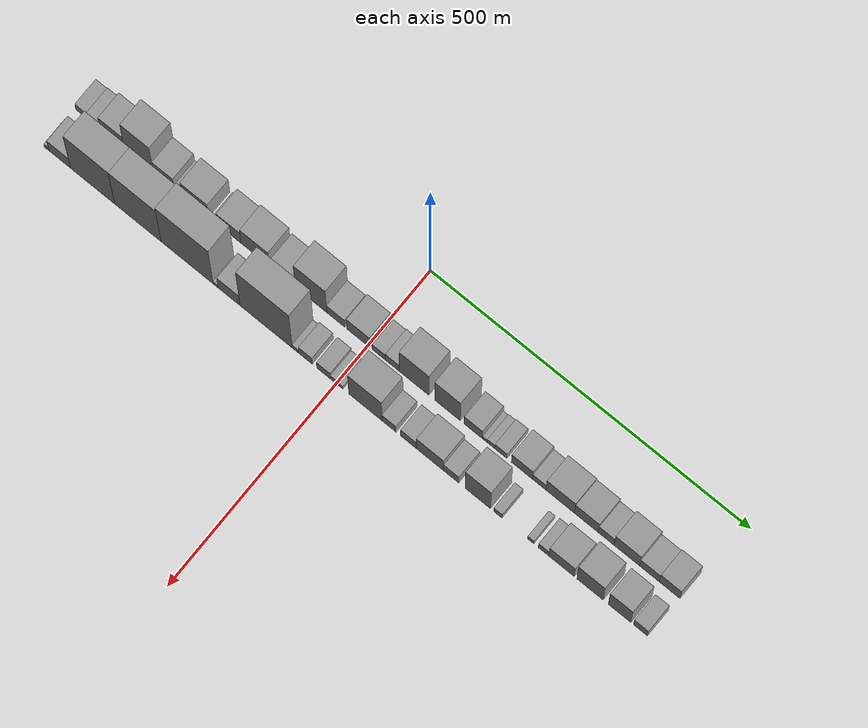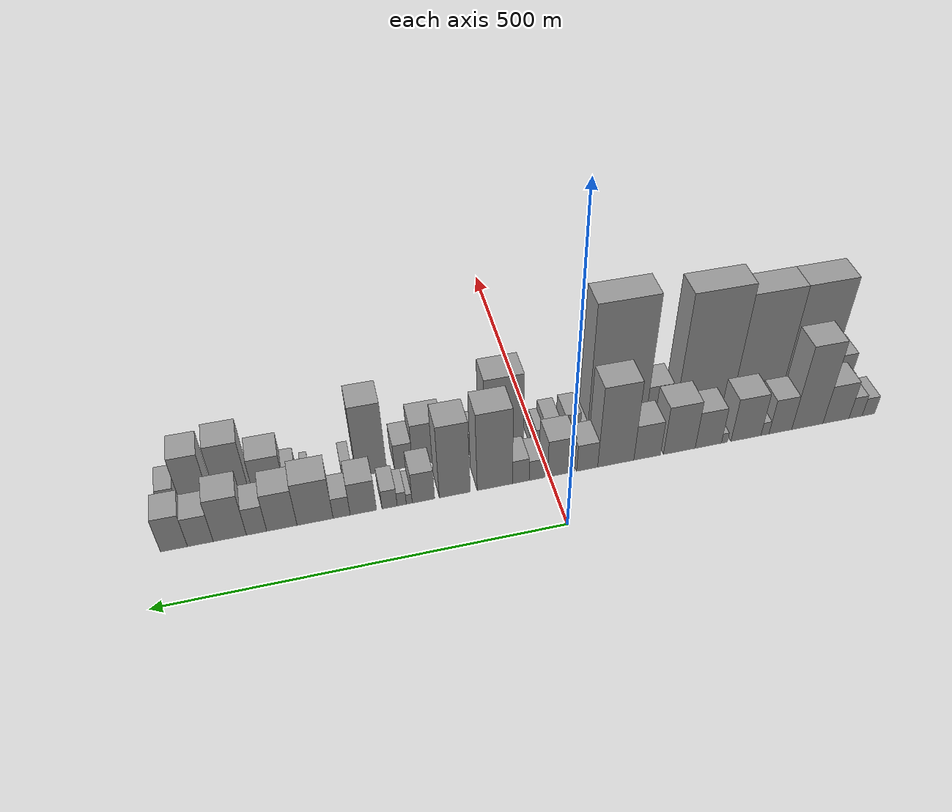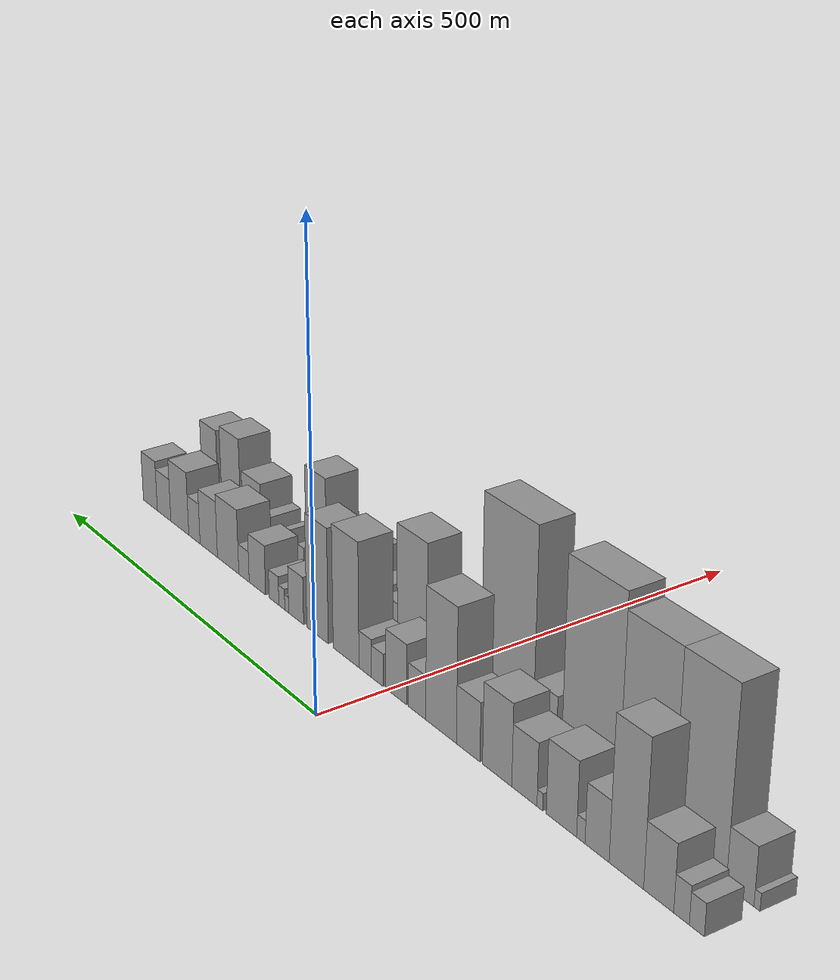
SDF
<sdf version="1.6">
 <world name="default">
  <scene>
   <sky><clouds><speed>12</speed></clouds></sky>
   <ambient>0.4 0.4 0.4 1</ambient>
   <background>0.7 0.7 0.7 1</background>
   <shadows>1</shadows>
  </scene>
  <gravity>0 0 -9.8066</gravity>
  <magnetic_field>6e-06 2.3e-05 -4.2e-05</magnetic_field>
  <physics default="0" name="default_physics" type="ode">
   <ode>
    <solver>
     <type>quick</type>
     <iters>10</iters>
     <sor>1.0</sor>
     <use_dynamic_moi_rescaling>0</use_dynamic_moi_rescaling>
    </solver>
    <constraints>
     <cfm>0</cfm>
     <erp>0.2</erp>
     <contact_max_correcting_vel>100</contact_max_correcting_vel>
     <contact_surface_layer>0.001</contact_surface_layer>
    </constraints>
   </ode>
   <max_step_size>0.004</max_step_size>
   <real_time_factor>1</real_time_factor>
   <real_time_update_rate>250</real_time_update_rate>
  </physics>
  <light name="sun" type="directional">
   <pose>0 0 10 0 0 0</pose>
   <diffuse>0.8 0.8 0.8 1</diffuse>
   <specular>0.2 0.2 0.2 1</specular>
   <attenuation>
    <range>1000</range>
    <constant>0.9</constant>
    <linear>0.01</linear>
    <quadratic>0.001</quadratic>
   </attenuation>
   <direction>-0.5 0.1 -0.9</direction>
  </light>
  <model name="building_1">
   <static>1</static>
   <pose>100.0000 -450.6333 0 0.000000 0.000000 0.000000</pose>
   <link name="link">
    <pose>0 0 16.50 0 0 0</pose>
    <collision name="collision"><geometry><box><size>40.0000 18.7334 33.0000</size></box></geometry></collision>
    <visual name="visual">
     <cast_shadows>0</cast_shadows>
     <geometry><box><size>40.0000 18.7334 33.0000</size></box></geometry>
     <material>
      <script>
       <uri>model://grey_wall/materials/scripts</uri>
       <uri>model://grey_wall/materials/textures</uri>
       <name>vrc/grey_wall</name>
      </script>
     </material>
    </visual>
   </link>
  </model>
  <model name="building_2">
   <static>1</static>
   <pose>100.0000 -431.4945 0 0.000000 0.000000 0.000000</pose>
   <link name="link">
    <pose>0 0 19.50 0 0 0</pose>
    <collision name="collision"><geometry><box><size>40.0000 19.5441 39.0000</size></box></geometry></collision>
    <visual name="visual">
     <cast_shadows>0</cast_shadows>
     <geometry><box><size>40.0000 19.5441 39.0000</size></box></geometry>
     <material>
      <script>
       <uri>model://grey_wall/materials/scripts</uri>
       <uri>model://grey_wall/materials/textures</uri>
       <name>vrc/grey_wall</name>
      </script>
     </material>
    </visual>
   </link>
  </model>
  <model name="building_3">
   <static>1</static>
   <pose>100.0000 -402.3901 0 0.000000 0.000000 0.000000</pose>
   <link name="link">
    <pose>0 0 34.50 0 0 0</pose>
    <collision name="collision"><geometry><box><size>40.0000 38.6647 69.0000</size></box></geometry></collision>
    <visual name="visual">
     <cast_shadows>0</cast_shadows>
     <geometry><box><size>40.0000 38.6647 69.0000</size></box></geometry>
     <material>
      <script>
       <uri>model://grey_wall/materials/scripts</uri>
       <uri>model://grey_wall/materials/textures</uri>
       <name>vrc/grey_wall</name>
      </script>
     </material>
    </visual>
   </link>
  </model>
  <model name="building_4">
   <static>1</static>
   <pose>100.0000 -360.1945 0 0.000000 0.000000 0.000000</pose>
   <link name="link">
    <pose>0 0 75.00 0 0 0</pose>
    <collision name="collision"><geometry><box><size>40.0000 45.7265 150.0000</size></box></geometry></collision>
    <visual name="visual">
     <cast_shadows>0</cast_shadows>
     <geometry><box><size>40.0000 45.7265 150.0000</size></box></geometry>
     <material>
      <script>
       <uri>model://grey_wall/materials/scripts</uri>
       <uri>model://grey_wall/materials/textures</uri>
       <name>vrc/grey_wall</name>
      </script>
     </material>
    </visual>
   </link>
  </model>
  <model name="building_5">
   <static>1</static>
   <pose>100.0000 -320.8762 0 0.000000 0.000000 0.000000</pose>
   <link name="link">
    <pose>0 0 31.50 0 0 0</pose>
    <collision name="collision"><geometry><box><size>40.0000 32.9101 63.0000</size></box></geometry></collision>
    <visual name="visual">
     <cast_shadows>0</cast_shadows>
     <geometry><box><size>40.0000 32.9101 63.0000</size></box></geometry>
     <material>
      <script>
       <uri>model://grey_wall/materials/scripts</uri>
       <uri>model://grey_wall/materials/textures</uri>
       <name>vrc/grey_wall</name>
      </script>
     </material>
    </visual>
   </link>
  </model>
  <model name="building_6">
   <static>1</static>
   <pose>100.0000 -298.6075 0 0.000000 0.000000 0.000000</pose>
   <link name="link">
    <pose>0 0 12.00 0 0 0</pose>
    <collision name="collision"><geometry><box><size>40.0000 11.6273 24.0000</size></box></geometry></collision>
    <visual name="visual">
     <cast_shadows>0</cast_shadows>
     <geometry><box><size>40.0000 11.6273 24.0000</size></box></geometry>
     <material>
      <script>
       <uri>model://grey_wall/materials/scripts</uri>
       <uri>model://grey_wall/materials/textures</uri>
       <name>vrc/grey_wall</name>
      </script>
     </material>
    </visual>
   </link>
  </model>
  <model name="building_7">
   <static>1</static>
   <pose>100.0000 -271.3014 0 0.000000 0.000000 0.000000</pose>
   <link name="link">
    <pose>0 0 39.00 0 0 0</pose>
    <collision name="collision"><geometry><box><size>40.0000 42.9849 78.0000</size></box></geometry></collision>
    <visual name="visual">
     <cast_shadows>0</cast_shadows>
     <geometry><box><size>40.0000 42.9849 78.0000</size></box></geometry>
     <material>
      <script>
       <uri>model://grey_wall/materials/scripts</uri>
       <uri>model://grey_wall/materials/textures</uri>
       <name>vrc/grey_wall</name>
      </script>
     </material>
    </visual>
   </link>
  </model>
  <model name="building_8">
   <static>1</static>
   <pose>100.0000 -240.5667 0 0.000000 0.000000 0.000000</pose>
   <link name="link">
    <pose>0 0 9.00 0 0 0</pose>
    <collision name="collision"><geometry><box><size>40.0000 8.4845 18.0000</size></box></geometry></collision>
    <visual name="visual">
     <cast_shadows>0</cast_shadows>
     <geometry><box><size>40.0000 8.4845 18.0000</size></box></geometry>
     <material>
      <script>
       <uri>model://grey_wall/materials/scripts</uri>
       <uri>model://grey_wall/materials/textures</uri>
       <name>vrc/grey_wall</name>
      </script>
     </material>
    </visual>
   </link>
  </model>
  <model name="building_9">
   <static>1</static>
   <pose>100.0000 -217.7223 0 0.000000 0.000000 0.000000</pose>
   <link name="link">
    <pose>0 0 33.00 0 0 0</pose>
    <collision name="collision"><geometry><box><size>40.0000 37.2043 66.0000</size></box></geometry></collision>
    <visual name="visual">
     <cast_shadows>0</cast_shadows>
     <geometry><box><size>40.0000 37.2043 66.0000</size></box></geometry>
     <material>
      <script>
       <uri>model://grey_wall/materials/scripts</uri>
       <uri>model://grey_wall/materials/textures</uri>
       <name>vrc/grey_wall</name>
      </script>
     </material>
    </visual>
   </link>
  </model>
  <model name="building_10">
   <static>1</static>
   <pose>100.0000 -176.9449 0 0.000000 0.000000 0.000000</pose>
   <link name="link">
    <pose>0 0 43.50 0 0 0</pose>
    <collision name="collision"><geometry><box><size>40.0000 44.3504 87.0000</size></box></geometry></collision>
    <visual name="visual">
     <cast_shadows>0</cast_shadows>
     <geometry><box><size>40.0000 44.3504 87.0000</size></box></geometry>
     <material>
      <script>
       <uri>model://grey_wall/materials/scripts</uri>
       <uri>model://grey_wall/materials/textures</uri>
       <name>vrc/grey_wall</name>
      </script>
     </material>
    </visual>
   </link>
  </model>
  <model name="building_11">
   <static>1</static>
   <pose>100.0000 -132.3073 0 0.000000 0.000000 0.000000</pose>
   <link name="link">
    <pose>0 0 31.50 0 0 0</pose>
    <collision name="collision"><geometry><box><size>40.0000 36.9248 63.0000</size></box></geometry></collision>
    <visual name="visual">
     <cast_shadows>0</cast_shadows>
     <geometry><box><size>40.0000 36.9248 63.0000</size></box></geometry>
     <material>
      <script>
       <uri>model://grey_wall/materials/scripts</uri>
       <uri>model://grey_wall/materials/textures</uri>
       <name>vrc/grey_wall</name>
      </script>
     </material>
    </visual>
   </link>
  </model>
  <model name="building_12">
   <static>1</static>
   <pose>100.0000 -89.1374 0 0.000000 0.000000 0.000000</pose>
   <link name="link">
    <pose>0 0 72.00 0 0 0</pose>
    <collision name="collision"><geometry><box><size>40.0000 49.4149 144.0000</size></box></geometry></collision>
    <visual name="visual">
     <cast_shadows>0</cast_shadows>
     <geometry><box><size>40.0000 49.4149 144.0000</size></box></geometry>
     <material>
      <script>
       <uri>model://grey_wall/materials/scripts</uri>
       <uri>model://grey_wall/materials/textures</uri>
       <name>vrc/grey_wall</name>
      </script>
     </material>
    </visual>
   </link>
  </model>
  <model name="building_13">
   <static>1</static>
   <pose>100.0000 -50.1708 0 0.000000 0.000000 0.000000</pose>
   <link name="link">
    <pose>0 0 24.00 0 0 0</pose>
    <collision name="collision"><geometry><box><size>40.0000 28.5183 48.0000</size></box></geometry></collision>
    <visual name="visual">
     <cast_shadows>0</cast_shadows>
     <geometry><box><size>40.0000 28.5183 48.0000</size></box></geometry>
     <material>
      <script>
       <uri>model://grey_wall/materials/scripts</uri>
       <uri>model://grey_wall/materials/textures</uri>
       <name>vrc/grey_wall</name>
      </script>
     </material>
    </visual>
   </link>
  </model>
  <model name="building_14">
   <static>1</static>
   <pose>100.0000 -14.8953 0 0.000000 0.000000 0.000000</pose>
   <link name="link">
    <pose>0 0 33.00 0 0 0</pose>
    <collision name="collision"><geometry><box><size>40.0000 36.0329 66.0000</size></box></geometry></collision>
    <visual name="visual">
     <cast_shadows>0</cast_shadows>
     <geometry><box><size>40.0000 36.0329 66.0000</size></box></geometry>
     <material>
      <script>
       <uri>model://grey_wall/materials/scripts</uri>
       <uri>model://grey_wall/materials/textures</uri>
       <name>vrc/grey_wall</name>
      </script>
     </material>
    </visual>
   </link>
  </model>
  <model name="building_15">
   <static>1</static>
   <pose>100.0000 17.3665 0 0.000000 0.000000 0.000000</pose>
   <link name="link">
    <pose>0 0 18.00 0 0 0</pose>
    <collision name="collision"><geometry><box><size>40.0000 20.4907 36.0000</size></box></geometry></collision>
    <visual name="visual">
     <cast_shadows>0</cast_shadows>
     <geometry><box><size>40.0000 20.4907 36.0000</size></box></geometry>
     <material>
      <script>
       <uri>model://grey_wall/materials/scripts</uri>
       <uri>model://grey_wall/materials/textures</uri>
       <name>vrc/grey_wall</name>
      </script>
     </material>
    </visual>
   </link>
  </model>
  <model name="building_16">
   <static>1</static>
   <pose>100.0000 38.4978 0 0.000000 0.000000 0.000000</pose>
   <link name="link">
    <pose>0 0 21.00 0 0 0</pose>
    <collision name="collision"><geometry><box><size>40.0000 21.7718 42.0000</size></box></geometry></collision>
    <visual name="visual">
     <cast_shadows>0</cast_shadows>
     <geometry><box><size>40.0000 21.7718 42.0000</size></box></geometry>
     <material>
      <script>
       <uri>model://grey_wall/materials/scripts</uri>
       <uri>model://grey_wall/materials/textures</uri>
       <name>vrc/grey_wall</name>
      </script>
     </material>
    </visual>
   </link>
  </model>
  <model name="building_17">
   <static>1</static>
   <pose>100.0000 72.5670 0 0.000000 0.000000 0.000000</pose>
   <link name="link">
    <pose>0 0 69.00 0 0 0</pose>
    <collision name="collision"><geometry><box><size>40.0000 46.3667 138.0000</size></box></geometry></collision>
    <visual name="visual">
     <cast_shadows>0</cast_shadows>
     <geometry><box><size>40.0000 46.3667 138.0000</size></box></geometry>
     <material>
      <script>
       <uri>model://grey_wall/materials/scripts</uri>
       <uri>model://grey_wall/materials/textures</uri>
       <name>vrc/grey_wall</name>
      </script>
     </material>
    </visual>
   </link>
  </model>
  <model name="building_18">
   <static>1</static>
   <pose>100.0000 124.7555 0 0.000000 0.000000 0.000000</pose>
   <link name="link">
    <pose>0 0 64.50 0 0 0</pose>
    <collision name="collision"><geometry><box><size>40.0000 40.0102 129.0000</size></box></geometry></collision>
    <visual name="visual">
     <cast_shadows>0</cast_shadows>
     <geometry><box><size>40.0000 40.0102 129.0000</size></box></geometry>
     <material>
      <script>
       <uri>model://grey_wall/materials/scripts</uri>
       <uri>model://grey_wall/materials/textures</uri>
       <name>vrc/grey_wall</name>
      </script>
     </material>
    </visual>
   </link>
  </model>
  <model name="building_19">
   <static>1</static>
   <pose>100.0000 165.0707 0 0.000000 0.000000 0.000000</pose>
   <link name="link">
    <pose>0 0 27.00 0 0 0</pose>
    <collision name="collision"><geometry><box><size>40.0000 28.6201 54.0000</size></box></geometry></collision>
    <visual name="visual">
     <cast_shadows>0</cast_shadows>
     <geometry><box><size>40.0000 28.6201 54.0000</size></box></geometry>
     <material>
      <script>
       <uri>model://grey_wall/materials/scripts</uri>
       <uri>model://grey_wall/materials/textures</uri>
       <name>vrc/grey_wall</name>
      </script>
     </material>
    </visual>
   </link>
  </model>
  <model name="building_20">
   <static>1</static>
   <pose>100.0000 183.1911 0 0.000000 0.000000 0.000000</pose>
   <link name="link">
    <pose>0 0 9.00 0 0 0</pose>
    <collision name="collision"><geometry><box><size>40.0000 7.6208 18.0000</size></box></geometry></collision>
    <visual name="visual">
     <cast_shadows>0</cast_shadows>
     <geometry><box><size>40.0000 7.6208 18.0000</size></box></geometry>
     <material>
      <script>
       <uri>model://grey_wall/materials/scripts</uri>
       <uri>model://grey_wall/materials/textures</uri>
       <name>vrc/grey_wall</name>
      </script>
     </material>
    </visual>
   </link>
  </model>
  <model name="building_21">
   <static>1</static>
   <pose>100.0000 192.7777 0 0.000000 0.000000 0.000000</pose>
   <link name="link">
    <pose>0 0 12.00 0 0 0</pose>
    <collision name="collision"><geometry><box><size>40.0000 11.5524 24.0000</size></box></geometry></collision>
    <visual name="visual">
     <cast_shadows>0</cast_shadows>
     <geometry><box><size>40.0000 11.5524 24.0000</size></box></geometry>
     <material>
      <script>
       <uri>model://grey_wall/materials/scripts</uri>
       <uri>model://grey_wall/materials/textures</uri>
       <name>vrc/grey_wall</name>
      </script>
     </material>
    </visual>
   </link>
  </model>
  <model name="building_22">
   <static>1</static>
   <pose>100.0000 208.0630 0 0.000000 0.000000 0.000000</pose>
   <link name="link">
    <pose>0 0 16.50 0 0 0</pose>
    <collision name="collision"><geometry><box><size>40.0000 19.0182 33.0000</size></box></geometry></collision>
    <visual name="visual">
     <cast_shadows>0</cast_shadows>
     <geometry><box><size>40.0000 19.0182 33.0000</size></box></geometry>
     <material>
      <script>
       <uri>model://grey_wall/materials/scripts</uri>
       <uri>model://grey_wall/materials/textures</uri>
       <name>vrc/grey_wall</name>
      </script>
     </material>
    </visual>
   </link>
  </model>
  <model name="building_23">
   <static>1</static>
   <pose>100.0000 241.0356 0 0.000000 0.000000 0.000000</pose>
   <link name="link">
    <pose>0 0 28.50 0 0 0</pose>
    <collision name="collision"><geometry><box><size>40.0000 32.9269 57.0000</size></box></geometry></collision>
    <visual name="visual">
     <cast_shadows>0</cast_shadows>
     <geometry><box><size>40.0000 32.9269 57.0000</size></box></geometry>
     <material>
      <script>
       <uri>model://grey_wall/materials/scripts</uri>
       <uri>model://grey_wall/materials/textures</uri>
       <name>vrc/grey_wall</name>
      </script>
     </material>
    </visual>
   </link>
  </model>
  <model name="building_24">
   <static>1</static>
   <pose>100.0000 268.0763 0 0.000000 0.000000 0.000000</pose>
   <link name="link">
    <pose>0 0 18.00 0 0 0</pose>
    <collision name="collision"><geometry><box><size>40.0000 21.1546 36.0000</size></box></geometry></collision>
    <visual name="visual">
     <cast_shadows>0</cast_shadows>
     <geometry><box><size>40.0000 21.1546 36.0000</size></box></geometry>
     <material>
      <script>
       <uri>model://grey_wall/materials/scripts</uri>
       <uri>model://grey_wall/materials/textures</uri>
       <name>vrc/grey_wall</name>
      </script>
     </material>
    </visual>
   </link>
  </model>
  <model name="building_25">
   <static>1</static>
   <pose>100.0000 300.8559 0 0.000000 0.000000 0.000000</pose>
   <link name="link">
    <pose>0 0 37.50 0 0 0</pose>
    <collision name="collision"><geometry><box><size>40.0000 44.4047 75.0000</size></box></geometry></collision>
    <visual name="visual">
     <cast_shadows>0</cast_shadows>
     <geometry><box><size>40.0000 44.4047 75.0000</size></box></geometry>
     <material>
      <script>
       <uri>model://grey_wall/materials/scripts</uri>
       <uri>model://grey_wall/materials/textures</uri>
       <name>vrc/grey_wall</name>
      </script>
     </material>
    </visual>
   </link>
  </model>
  <model name="building_26">
   <static>1</static>
   <pose>100.0000 341.5519 0 0.000000 0.000000 0.000000</pose>
   <link name="link">
    <pose>0 0 33.00 0 0 0</pose>
    <collision name="collision"><geometry><box><size>40.0000 36.9872 66.0000</size></box></geometry></collision>
    <visual name="visual">
     <cast_shadows>0</cast_shadows>
     <geometry><box><size>40.0000 36.9872 66.0000</size></box></geometry>
     <material>
      <script>
       <uri>model://grey_wall/materials/scripts</uri>
       <uri>model://grey_wall/materials/textures</uri>
       <name>vrc/grey_wall</name>
      </script>
     </material>
    </visual>
   </link>
  </model>
  <model name="building_27">
   <static>1</static>
   <pose>100.0000 372.3275 0 0.000000 0.000000 0.000000</pose>
   <link name="link">
    <pose>0 0 24.00 0 0 0</pose>
    <collision name="collision"><geometry><box><size>40.0000 24.5641 48.0000</size></box></geometry></collision>
    <visual name="visual">
     <cast_shadows>0</cast_shadows>
     <geometry><box><size>40.0000 24.5641 48.0000</size></box></geometry>
     <material>
      <script>
       <uri>model://grey_wall/materials/scripts</uri>
       <uri>model://grey_wall/materials/textures</uri>
       <name>vrc/grey_wall</name>
      </script>
     </material>
    </visual>
   </link>
  </model>
  <model name="building_28">
   <static>1</static>
   <pose>100.0000 404.4426 0 0.000000 0.000000 0.000000</pose>
   <link name="link">
    <pose>0 0 37.50 0 0 0</pose>
    <collision name="collision"><geometry><box><size>40.0000 39.6660 75.0000</size></box></geometry></collision>
    <visual name="visual">
     <cast_shadows>0</cast_shadows>
     <geometry><box><size>40.0000 39.6660 75.0000</size></box></geometry>
     <material>
      <script>
       <uri>model://grey_wall/materials/scripts</uri>
       <uri>model://grey_wall/materials/textures</uri>
       <name>vrc/grey_wall</name>
      </script>
     </material>
    </visual>
   </link>
  </model>
  <model name="building_29">
   <static>1</static>
   <pose>100.0000 439.5556 0 0.000000 0.000000 0.000000</pose>
   <link name="link">
    <pose>0 0 25.50 0 0 0</pose>
    <collision name="collision"><geometry><box><size>40.0000 30.5601 51.0000</size></box></geometry></collision>
    <visual name="visual">
     <cast_shadows>0</cast_shadows>
     <geometry><box><size>40.0000 30.5601 51.0000</size></box></geometry>
     <material>
      <script>
       <uri>model://grey_wall/materials/scripts</uri>
       <uri>model://grey_wall/materials/textures</uri>
       <name>vrc/grey_wall</name>
      </script>
     </material>
    </visual>
   </link>
  </model>
  <model name="building_30">
   <static>1</static>
   <pose>100.0000 470.7712 0 0.000000 0.000000 0.000000</pose>
   <link name="link">
    <pose>0 0 30.00 0 0 0</pose>
    <collision name="collision"><geometry><box><size>40.0000 31.8711 60.0000</size></box></geometry></collision>
    <visual name="visual">
     <cast_shadows>0</cast_shadows>
     <geometry><box><size>40.0000 31.8711 60.0000</size></box></geometry>
     <material>
      <script>
       <uri>model://grey_wall/materials/scripts</uri>
       <uri>model://grey_wall/materials/textures</uri>
       <name>vrc/grey_wall</name>
      </script>
     </material>
    </visual>
   </link>
  </model>
  <model name="building_31">
   <static>1</static>
   <pose>160.0000 -456.2703 0 0.000000 0.000000 0.000000</pose>
   <link name="link">
    <pose>0 0 9.00 0 0 0</pose>
    <collision name="collision"><geometry><box><size>40.0000 7.4594 18.0000</size></box></geometry></collision>
    <visual name="visual">
     <cast_shadows>0</cast_shadows>
     <geometry><box><size>40.0000 7.4594 18.0000</size></box></geometry>
     <material>
      <script>
       <uri>model://grey_wall/materials/scripts</uri>
       <uri>model://grey_wall/materials/textures</uri>
       <name>vrc/grey_wall</name>
      </script>
     </material>
    </visual>
   </link>
  </model>
  <model name="building_32">
   <static>1</static>
   <pose>160.0000 -435.4182 0 0.000000 0.000000 0.000000</pose>
   <link name="link">
    <pose>0 0 30.00 0 0 0</pose>
    <collision name="collision"><geometry><box><size>40.0000 34.2449 60.0000</size></box></geometry></collision>
    <visual name="visual">
     <cast_shadows>0</cast_shadows>
     <geometry><box><size>40.0000 34.2449 60.0000</size></box></geometry>
     <material>
      <script>
       <uri>model://grey_wall/materials/scripts</uri>
       <uri>model://grey_wall/materials/textures</uri>
       <name>vrc/grey_wall</name>
      </script>
     </material>
    </visual>
   </link>
  </model>
  <model name="building_33">
   <static>1</static>
   <pose>160.0000 -383.4222 0 0.000000 0.000000 0.000000</pose>
   <link name="link">
    <pose>0 0 99.00 0 0 0</pose>
    <collision name="collision"><geometry><box><size>40.0000 69.7472 198.0000</size></box></geometry></collision>
    <visual name="visual">
     <cast_shadows>0</cast_shadows>
     <geometry><box><size>40.0000 69.7472 198.0000</size></box></geometry>
     <material>
      <script>
       <uri>model://grey_wall/materials/scripts</uri>
       <uri>model://grey_wall/materials/textures</uri>
       <name>vrc/grey_wall</name>
      </script>
     </material>
    </visual>
   </link>
  </model>
  <model name="building_34">
   <static>1</static>
   <pose>160.0000 -311.9260 0 0.000000 0.000000 0.000000</pose>
   <link name="link">
    <pose>0 0 99.00 0 0 0</pose>
    <collision name="collision"><geometry><box><size>40.0000 73.2451 198.0000</size></box></geometry></collision>
    <visual name="visual">
     <cast_shadows>0</cast_shadows>
     <geometry><box><size>40.0000 73.2451 198.0000</size></box></geometry>
     <material>
      <script>
       <uri>model://grey_wall/materials/scripts</uri>
       <uri>model://grey_wall/materials/textures</uri>
       <name>vrc/grey_wall</name>
      </script>
     </material>
    </visual>
   </link>
  </model>
  <model name="building_35">
   <static>1</static>
   <pose>160.0000 -234.3096 0 0.000000 0.000000 0.000000</pose>
   <link name="link">
    <pose>0 0 108.00 0 0 0</pose>
    <collision name="collision"><geometry><box><size>40.0000 81.9879 216.0000</size></box></geometry></collision>
    <visual name="visual">
     <cast_shadows>0</cast_shadows>
     <geometry><box><size>40.0000 81.9879 216.0000</size></box></geometry>
     <material>
      <script>
       <uri>model://grey_wall/materials/scripts</uri>
       <uri>model://grey_wall/materials/textures</uri>
       <name>vrc/grey_wall</name>
      </script>
     </material>
    </visual>
   </link>
  </model>
  <model name="building_36">
   <static>1</static>
   <pose>160.0000 -189.4546 0 0.000000 0.000000 0.000000</pose>
   <link name="link">
    <pose>0 0 9.00 0 0 0</pose>
    <collision name="collision"><geometry><box><size>40.0000 7.7221 18.0000</size></box></geometry></collision>
    <visual name="visual">
     <cast_shadows>0</cast_shadows>
     <geometry><box><size>40.0000 7.7221 18.0000</size></box></geometry>
     <material>
      <script>
       <uri>model://grey_wall/materials/scripts</uri>
       <uri>model://grey_wall/materials/textures</uri>
       <name>vrc/grey_wall</name>
      </script>
     </material>
    </visual>
   </link>
  </model>
  <model name="building_37">
   <static>1</static>
   <pose>160.0000 -168.2858 0 0.000000 0.000000 0.000000</pose>
   <link name="link">
    <pose>0 0 33.00 0 0 0</pose>
    <collision name="collision"><geometry><box><size>40.0000 34.6155 66.0000</size></box></geometry></collision>
    <visual name="visual">
     <cast_shadows>0</cast_shadows>
     <geometry><box><size>40.0000 34.6155 66.0000</size></box></geometry>
     <material>
      <script>
       <uri>model://grey_wall/materials/scripts</uri>
       <uri>model://grey_wall/materials/textures</uri>
       <name>vrc/grey_wall</name>
      </script>
     </material>
    </visual>
   </link>
  </model>
  <model name="building_38">
   <static>1</static>
   <pose>160.0000 -110.0832 0 0.000000 0.000000 0.000000</pose>
   <link name="link">
    <pose>0 0 112.50 0 0 0</pose>
    <collision name="collision"><geometry><box><size>40.0000 81.7898 225.0000</size></box></geometry></collision>
    <visual name="visual">
     <cast_shadows>0</cast_shadows>
     <geometry><box><size>40.0000 81.7898 225.0000</size></box></geometry>
     <material>
      <script>
       <uri>model://grey_wall/materials/scripts</uri>
       <uri>model://grey_wall/materials/textures</uri>
       <name>vrc/grey_wall</name>
      </script>
     </material>
    </visual>
   </link>
  </model>
  <model name="building_39">
   <static>1</static>
   <pose>160.0000 -64.0164 0 0.000000 0.000000 0.000000</pose>
   <link name="link">
    <pose>0 0 10.50 0 0 0</pose>
    <collision name="collision"><geometry><box><size>40.0000 10.3438 21.0000</size></box></geometry></collision>
    <visual name="visual">
     <cast_shadows>0</cast_shadows>
     <geometry><box><size>40.0000 10.3438 21.0000</size></box></geometry>
     <material>
      <script>
       <uri>model://grey_wall/materials/scripts</uri>
       <uri>model://grey_wall/materials/textures</uri>
       <name>vrc/grey_wall</name>
      </script>
     </material>
    </visual>
   </link>
  </model>
  <model name="building_40">
   <static>1</static>
   <pose>160.0000 -48.1660 0 0.000000 0.000000 0.000000</pose>
   <link name="link">
    <pose>0 0 21.00 0 0 0</pose>
    <collision name="collision"><geometry><box><size>40.0000 21.3569 42.0000</size></box></geometry></collision>
    <visual name="visual">
     <cast_shadows>0</cast_shadows>
     <geometry><box><size>40.0000 21.3569 42.0000</size></box></geometry>
     <material>
      <script>
       <uri>model://grey_wall/materials/scripts</uri>
       <uri>model://grey_wall/materials/textures</uri>
       <name>vrc/grey_wall</name>
      </script>
     </material>
    </visual>
   </link>
  </model>
  <model name="building_41">
   <static>1</static>
   <pose>160.0000 -19.8003 0 0.000000 0.000000 0.000000</pose>
   <link name="link">
    <pose>0 0 19.50 0 0 0</pose>
    <collision name="collision"><geometry><box><size>40.0000 21.3745 39.0000</size></box></geometry></collision>
    <visual name="visual">
     <cast_shadows>0</cast_shadows>
     <geometry><box><size>40.0000 21.3745 39.0000</size></box></geometry>
     <material>
      <script>
       <uri>model://grey_wall/materials/scripts</uri>
       <uri>model://grey_wall/materials/textures</uri>
       <name>vrc/grey_wall</name>
      </script>
     </material>
    </visual>
   </link>
  </model>
  <model name="building_42">
   <static>1</static>
   <pose>160.0000 -3.5782 0 0.000000 0.000000 0.000000</pose>
   <link name="link">
    <pose>0 0 12.00 0 0 0</pose>
    <collision name="collision"><geometry><box><size>40.0000 11.0698 24.0000</size></box></geometry></collision>
    <visual name="visual">
     <cast_shadows>0</cast_shadows>
     <geometry><box><size>40.0000 11.0698 24.0000</size></box></geometry>
     <material>
      <script>
       <uri>model://grey_wall/materials/scripts</uri>
       <uri>model://grey_wall/materials/textures</uri>
       <name>vrc/grey_wall</name>
      </script>
     </material>
    </visual>
   </link>
  </model>
  <model name="building_43">
   <static>1</static>
   <pose>160.0000 6.2421 0 0.000000 0.000000 0.000000</pose>
   <link name="link">
    <pose>0 0 9.00 0 0 0</pose>
    <collision name="collision"><geometry><box><size>40.0000 8.5708 18.0000</size></box></geometry></collision>
    <visual name="visual">
     <cast_shadows>0</cast_shadows>
     <geometry><box><size>40.0000 8.5708 18.0000</size></box></geometry>
     <material>
      <script>
       <uri>model://grey_wall/materials/scripts</uri>
       <uri>model://grey_wall/materials/textures</uri>
       <name>vrc/grey_wall</name>
      </script>
     </material>
    </visual>
   </link>
  </model>
  <model name="building_44">
   <static>1</static>
   <pose>160.0000 45.5897 0 0.000000 0.000000 0.000000</pose>
   <link name="link">
    <pose>0 0 66.00 0 0 0</pose>
    <collision name="collision"><geometry><box><size>40.0000 52.1244 132.0000</size></box></geometry></collision>
    <visual name="visual">
     <cast_shadows>0</cast_shadows>
     <geometry><box><size>40.0000 52.1244 132.0000</size></box></geometry>
     <material>
      <script>
       <uri>model://grey_wall/materials/scripts</uri>
       <uri>model://grey_wall/materials/textures</uri>
       <name>vrc/grey_wall</name>
      </script>
     </material>
    </visual>
   </link>
  </model>
  <model name="building_45">
   <static>1</static>
   <pose>160.0000 82.6738 0 0.000000 0.000000 0.000000</pose>
   <link name="link">
    <pose>0 0 21.00 0 0 0</pose>
    <collision name="collision"><geometry><box><size>40.0000 22.0439 42.0000</size></box></geometry></collision>
    <visual name="visual">
     <cast_shadows>0</cast_shadows>
     <geometry><box><size>40.0000 22.0439 42.0000</size></box></geometry>
     <material>
      <script>
       <uri>model://grey_wall/materials/scripts</uri>
       <uri>model://grey_wall/materials/textures</uri>
       <name>vrc/grey_wall</name>
      </script>
     </material>
    </visual>
   </link>
  </model>
  <model name="building_46">
   <static>1</static>
   <pose>160.0000 113.0289 0 0.000000 0.000000 0.000000</pose>
   <link name="link">
    <pose>0 0 22.50 0 0 0</pose>
    <collision name="collision"><geometry><box><size>40.0000 24.6662 45.0000</size></box></geometry></collision>
    <visual name="visual">
     <cast_shadows>0</cast_shadows>
     <geometry><box><size>40.0000 24.6662 45.0000</size></box></geometry>
     <material>
      <script>
       <uri>model://grey_wall/materials/scripts</uri>
       <uri>model://grey_wall/materials/textures</uri>
       <name>vrc/grey_wall</name>
      </script>
     </material>
    </visual>
   </link>
  </model>
  <model name="building_47">
   <static>1</static>
   <pose>160.0000 146.5552 0 0.000000 0.000000 0.000000</pose>
   <link name="link">
    <pose>0 0 37.50 0 0 0</pose>
    <collision name="collision"><geometry><box><size>40.0000 42.3864 75.0000</size></box></geometry></collision>
    <visual name="visual">
     <cast_shadows>0</cast_shadows>
     <geometry><box><size>40.0000 42.3864 75.0000</size></box></geometry>
     <material>
      <script>
       <uri>model://grey_wall/materials/scripts</uri>
       <uri>model://grey_wall/materials/textures</uri>
       <name>vrc/grey_wall</name>
      </script>
     </material>
    </visual>
   </link>
  </model>
  <model name="building_48">
   <static>1</static>
   <pose>160.0000 179.6316 0 0.000000 0.000000 0.000000</pose>
   <link name="link">
    <pose>0 0 22.50 0 0 0</pose>
    <collision name="collision"><geometry><box><size>40.0000 23.7664 45.0000</size></box></geometry></collision>
    <visual name="visual">
     <cast_shadows>0</cast_shadows>
     <geometry><box><size>40.0000 23.7664 45.0000</size></box></geometry>
     <material>
      <script>
       <uri>model://grey_wall/materials/scripts</uri>
       <uri>model://grey_wall/materials/textures</uri>
       <name>vrc/grey_wall</name>
      </script>
     </material>
    </visual>
   </link>
  </model>
  <model name="building_49">
   <static>1</static>
   <pose>160.0000 221.2124 0 0.000000 0.000000 0.000000</pose>
   <link name="link">
    <pose>0 0 63.00 0 0 0</pose>
    <collision name="collision"><geometry><box><size>40.0000 39.3952 126.0000</size></box></geometry></collision>
    <visual name="visual">
     <cast_shadows>0</cast_shadows>
     <geometry><box><size>40.0000 39.3952 126.0000</size></box></geometry>
     <material>
      <script>
       <uri>model://grey_wall/materials/scripts</uri>
       <uri>model://grey_wall/materials/textures</uri>
       <name>vrc/grey_wall</name>
      </script>
     </material>
    </visual>
   </link>
  </model>
  <model name="building_50">
   <static>1</static>
   <pose>160.0000 252.4981 0 0.000000 0.000000 0.000000</pose>
   <link name="link">
    <pose>0 0 13.50 0 0 0</pose>
    <collision name="collision"><geometry><box><size>40.0000 13.1762 27.0000</size></box></geometry></collision>
    <visual name="visual">
     <cast_shadows>0</cast_shadows>
     <geometry><box><size>40.0000 13.1762 27.0000</size></box></geometry>
     <material>
      <script>
       <uri>model://grey_wall/materials/scripts</uri>
       <uri>model://grey_wall/materials/textures</uri>
       <name>vrc/grey_wall</name>
      </script>
     </material>
    </visual>
   </link>
  </model>
  <model name="building_51">
   <static>1</static>
   <pose>160.0000 303.6340 0 0.000000 0.000000 0.000000</pose>
   <link name="link">
    <pose>0 0 10.50 0 0 0</pose>
    <collision name="collision"><geometry><box><size>40.0000 9.6985 21.0000</size></box></geometry></collision>
    <visual name="visual">
     <cast_shadows>0</cast_shadows>
     <geometry><box><size>40.0000 9.6985 21.0000</size></box></geometry>
     <material>
      <script>
       <uri>model://grey_wall/materials/scripts</uri>
       <uri>model://grey_wall/materials/textures</uri>
       <name>vrc/grey_wall</name>
      </script>
     </material>
    </visual>
   </link>
  </model>
  <model name="building_52">
   <static>1</static>
   <pose>160.0000 323.7401 0 0.000000 0.000000 0.000000</pose>
   <link name="link">
    <pose>0 0 16.50 0 0 0</pose>
    <collision name="collision"><geometry><box><size>40.0000 16.5138 33.0000</size></box></geometry></collision>
    <visual name="visual">
     <cast_shadows>0</cast_shadows>
     <geometry><box><size>40.0000 16.5138 33.0000</size></box></geometry>
     <material>
      <script>
       <uri>model://grey_wall/materials/scripts</uri>
       <uri>model://grey_wall/materials/textures</uri>
       <name>vrc/grey_wall</name>
      </script>
     </material>
    </visual>
   </link>
  </model>
  <model name="building_53">
   <static>1</static>
   <pose>160.0000 351.7377 0 0.000000 0.000000 0.000000</pose>
   <link name="link">
    <pose>0 0 33.00 0 0 0</pose>
    <collision name="collision"><geometry><box><size>40.0000 39.4812 66.0000</size></box></geometry></collision>
    <visual name="visual">
     <cast_shadows>0</cast_shadows>
     <geometry><box><size>40.0000 39.4812 66.0000</size></box></geometry>
     <material>
      <script>
       <uri>model://grey_wall/materials/scripts</uri>
       <uri>model://grey_wall/materials/textures</uri>
       <name>vrc/grey_wall</name>
      </script>
     </material>
    </visual>
   </link>
  </model>
  <model name="building_54">
   <static>1</static>
   <pose>160.0000 395.8533 0 0.000000 0.000000 0.000000</pose>
   <link name="link">
    <pose>0 0 51.00 0 0 0</pose>
    <collision name="collision"><geometry><box><size>40.0000 40.7501 102.0000</size></box></geometry></collision>
    <visual name="visual">
     <cast_shadows>0</cast_shadows>
     <geometry><box><size>40.0000 40.7501 102.0000</size></box></geometry>
     <material>
      <script>
       <uri>model://grey_wall/materials/scripts</uri>
       <uri>model://grey_wall/materials/textures</uri>
       <name>vrc/grey_wall</name>
      </script>
     </material>
    </visual>
   </link>
  </model>
  <model name="building_55">
   <static>1</static>
   <pose>160.0000 441.7702 0 0.000000 0.000000 0.000000</pose>
   <link name="link">
    <pose>0 0 46.50 0 0 0</pose>
    <collision name="collision"><geometry><box><size>40.0000 35.0836 93.0000</size></box></geometry></collision>
    <visual name="visual">
     <cast_shadows>0</cast_shadows>
     <geometry><box><size>40.0000 35.0836 93.0000</size></box></geometry>
     <material>
      <script>
       <uri>model://grey_wall/materials/scripts</uri>
       <uri>model://grey_wall/materials/textures</uri>
       <name>vrc/grey_wall</name>
      </script>
     </material>
    </visual>
   </link>
  </model>
  <model name="building_56">
   <static>1</static>
   <pose>160.0000 474.1163 0 0.000000 0.000000 0.000000</pose>
   <link name="link">
    <pose>0 0 21.00 0 0 0</pose>
    <collision name="collision"><geometry><box><size>40.0000 21.6085 42.0000</size></box></geometry></collision>
    <visual name="visual">
     <cast_shadows>0</cast_shadows>
     <geometry><box><size>40.0000 21.6085 42.0000</size></box></geometry>
     <material>
      <script>
       <uri>model://grey_wall/materials/scripts</uri>
       <uri>model://grey_wall/materials/textures</uri>
       <name>vrc/grey_wall</name>
      </script>
     </material>
    </visual>
   </link>
  </model>
 </world>
</sdf>
